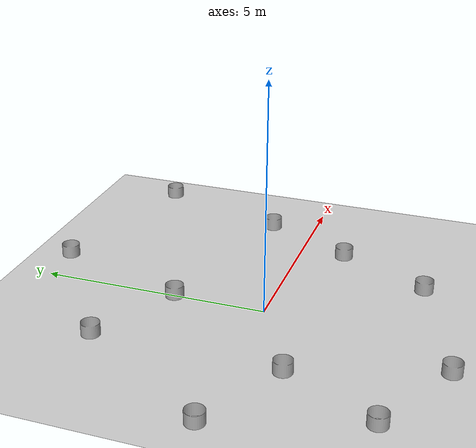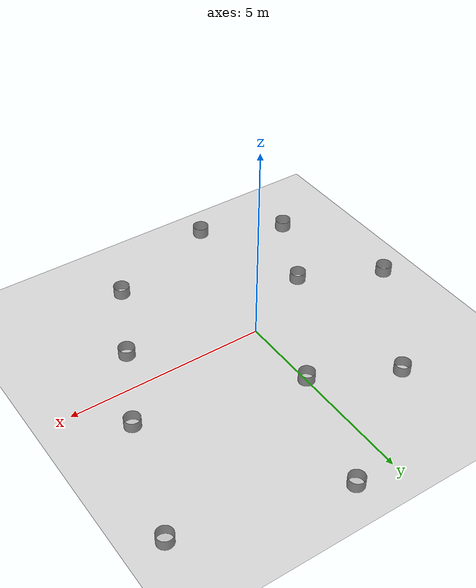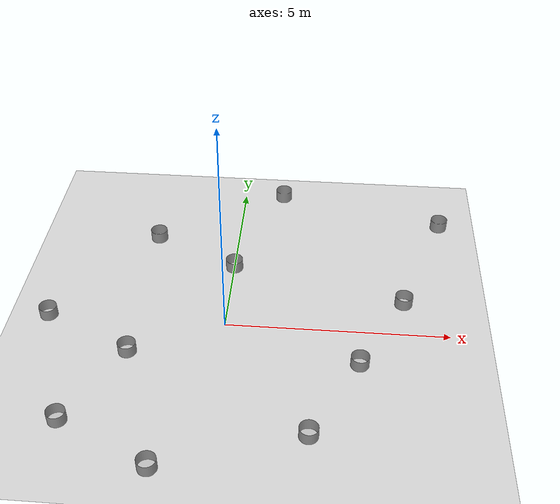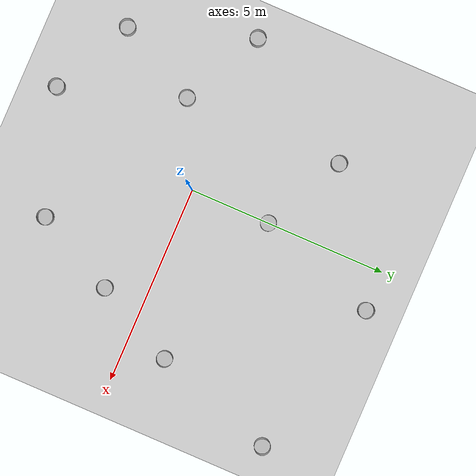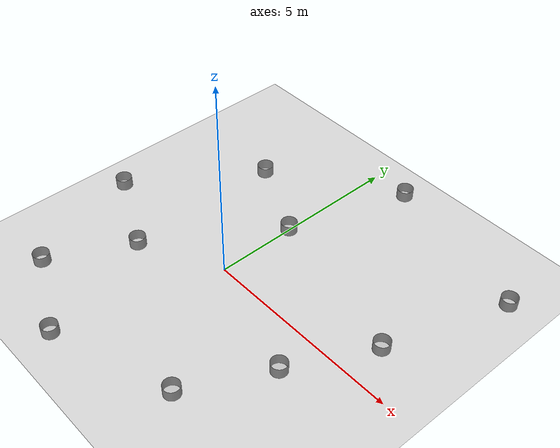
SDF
<sdf version="1.7">
 <world name="default">
  <plugin name="ros_link_attacher_plugin" filename="libgazebo_ros_link_attacher.so"/>
  <light name="sun" type="directional">
   <pose>0 0 10 0 -0 0</pose>
   <diffuse>0.8 0.8 0.8 1</diffuse>
   <specular>0.2 0.2 0.2 1</specular>
   <attenuation>
    <range>1000</range>
    <constant>0.9</constant>
    <linear>0.01</linear>
    <quadratic>0.001</quadratic>
   </attenuation>
   <direction>-0.5 0.1 -0.9</direction>
   <spot><inner_angle>0</inner_angle><outer_angle>0</outer_angle><falloff>0</falloff></spot>
  </light>
  <model name="basket5">
   <static>1</static>
   <link name="link">
    <visual name="visual"><geometry><mesh><uri>model://Basket/meshes/basket.dae</uri></mesh></geometry></visual>
   </link>
   <pose>-4.0 0.0 0 0 -0 0</pose>
  </model>
  <model name="basket6">
   <static>1</static>
   <link name="link">
    <visual name="visual"><geometry><mesh><uri>model://Basket/meshes/basket.dae</uri></mesh></geometry></visual>
   </link>
   <pose>-3.0 -3.0 0 0 -0 0</pose>
  </model>
  <model name="basket7">
   <static>1</static>
   <link name="link">
    <visual name="visual"><geometry><mesh><uri>model://Basket/meshes/basket.dae</uri></mesh></geometry></visual>
   </link>
   <pose>-2.0 -1.0 0 0 -0 0</pose>
  </model>
  <model name="basket8">
   <static>1</static>
   <link name="link">
    <visual name="visual"><geometry><mesh><uri>model://Basket/meshes/basket.dae</uri></mesh></geometry></visual>
   </link>
   <pose>-1.0 -4.0 0 0 -0 0</pose>
  </model>
  <model name="basket9">
   <static>1</static>
   <link name="link">
    <visual name="visual"><geometry><mesh><uri>model://Basket/meshes/basket.dae</uri></mesh></geometry></visual>
   </link>
   <pose>2.0 -3.0 0 0 -0 0</pose>
  </model>
  <model name="basket10">
   <static>1</static>
   <link name="link">
    <visual name="visual"><geometry><mesh><uri>model://Basket/meshes/basket.dae</uri></mesh></geometry></visual>
   </link>
   <pose>3.0 -1.0 0 0 -0 0</pose>
  </model>
  <model name="basket11">
   <static>1</static>
   <link name="link">
    <visual name="visual"><geometry><mesh><uri>model://Basket/meshes/basket.dae</uri></mesh></geometry></visual>
   </link>
   <pose>4.0 1.0 0 0 -0 0</pose>
  </model>
  <model name="basket12">
   <static>1</static>
   <link name="link">
    <visual name="visual"><geometry><mesh><uri>model://Basket/meshes/basket.dae</uri></mesh></geometry></visual>
   </link>
   <pose>5.0 4.0 0 0 -0 0</pose>
  </model>
  <model name="basket13">
   <static>1</static>
   <link name="link">
    <visual name="visual"><geometry><mesh><uri>model://Basket/meshes/basket.dae</uri></mesh></geometry></visual>
   </link>
   <pose>0.0 2.0 0 0 -0 0</pose>
  </model>
  <model name="basket14">
   <static>1</static>
   <link name="link">
    <visual name="visual"><geometry><mesh><uri>model://Basket/meshes/basket.dae</uri></mesh></geometry></visual>
   </link>
   <pose>-2.0 3.0 0 0 -0 0</pose>
  </model>
  <model name="basket15">
   <static>1</static>
   <link name="link">
    <visual name="visual"><geometry><mesh><uri>model://Basket/meshes/basket.dae</uri></mesh></geometry></visual>
   </link>
   <pose>1.0 5.0 0 0 -0 0</pose>
  </model>
  <model name="ground_plane">
   <static>1</static>
   <link name="link">
    <collision name="collision">
     <geometry><plane><normal>0 0 1</normal><size>100 100</size></plane></geometry>
     <surface>
      <contact><collide_bitmask>65535</collide_bitmask></contact>
      <friction><ode><mu>100</mu><mu2>50</mu2></ode></friction>
     </surface>
    </collision>
    <visual name="visual">
     <cast_shadows>0</cast_shadows>
     <geometry><plane><normal>0 0 1</normal><size>100 100</size></plane></geometry>
     <material>
      <ambient>0 0 0 1</ambient>
      <diffuse>0 0 0 1</diffuse>
      <specular>0 0 0 1</specular>
      <emissive>0 0 0 0</emissive>
      <script><uri>file://media/materials/scripts/gazebo.material</uri><name>Gazebo/Grey</name></script>
     </material>
    </visual>
   </link>
  </model>
  <gravity>0 0 -9.8</gravity>
  <magnetic_field>6e-06 2.3e-05 -4.2e-05</magnetic_field>
  <atmosphere type="adiabatic"/>
  <physics type="ode">
   <max_step_size>0.002</max_step_size>
   <real_time_factor>1</real_time_factor>
   <real_time_update_rate>500</real_time_update_rate>
  </physics>
  <scene><ambient>0.4 0.4 0.4 1</ambient><background>0.7 0.7 0.7 1</background><shadows>1</shadows></scene>
  <spherical_coordinates>
   <surface_model>EARTH_WGS84</surface_model>
   <latitude_deg>0</latitude_deg>
   <longitude_deg>0</longitude_deg>
   <elevation>0</elevation>
   <heading_deg>0</heading_deg>
  </spherical_coordinates>
 </world>
</sdf>
